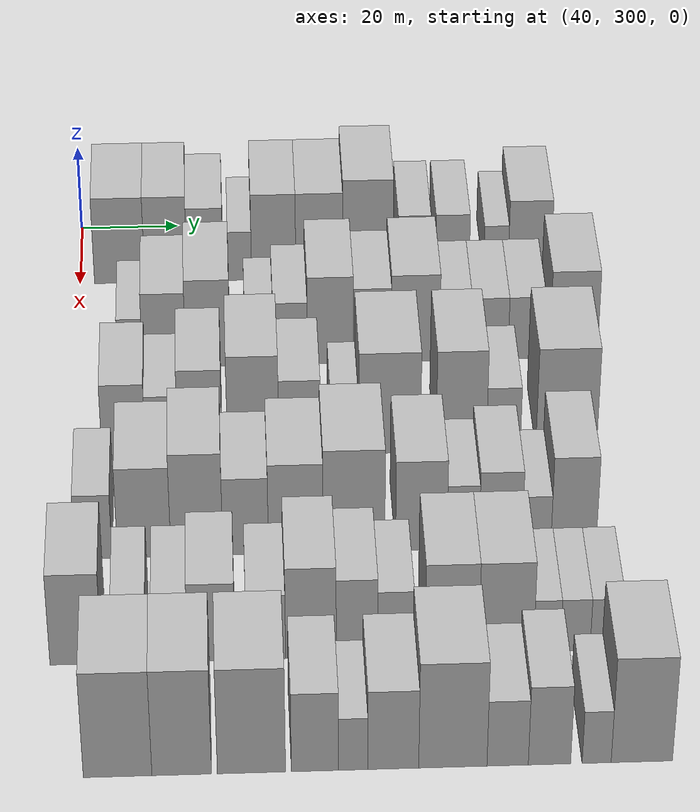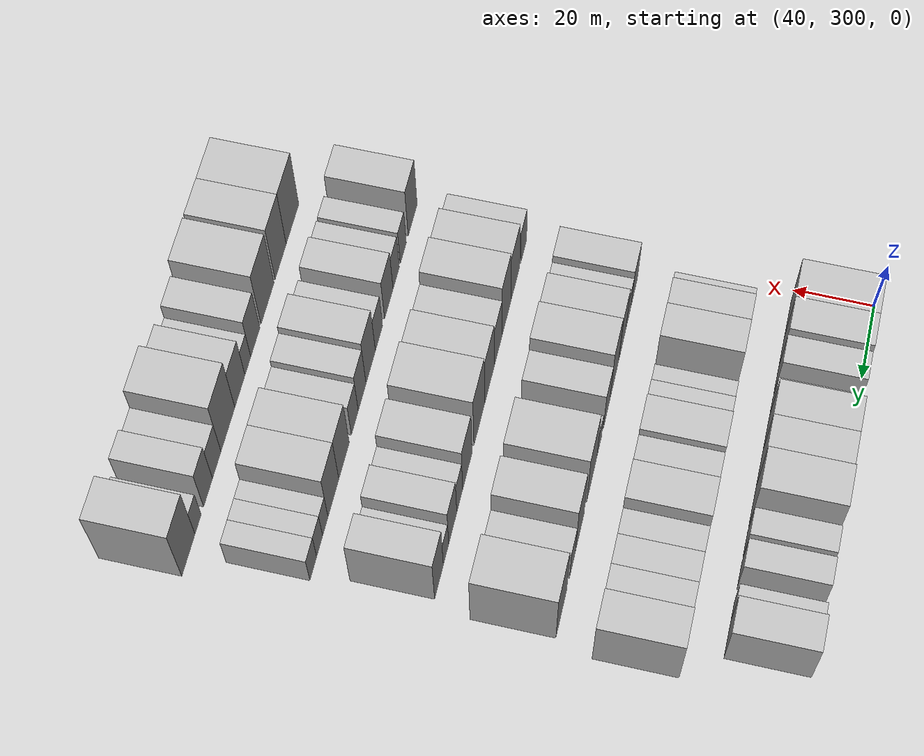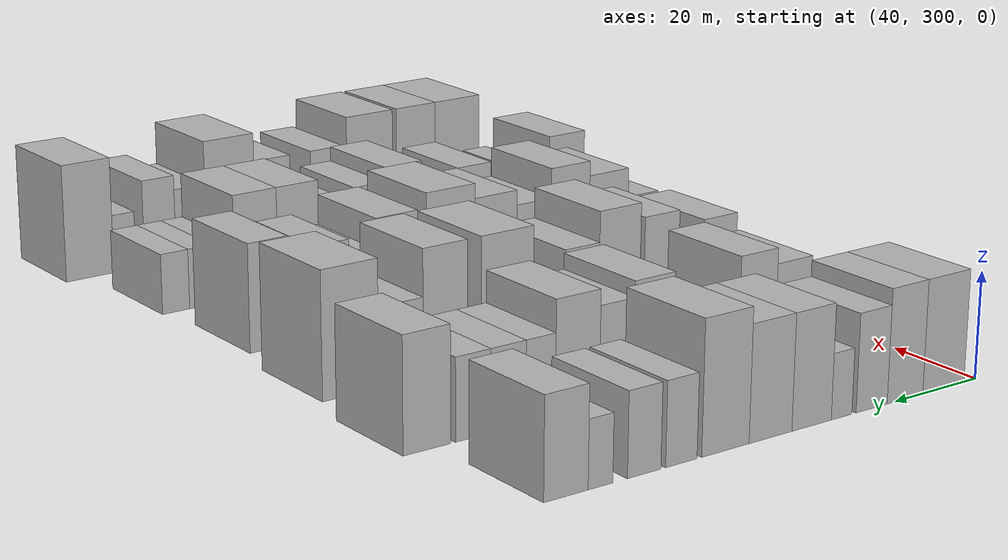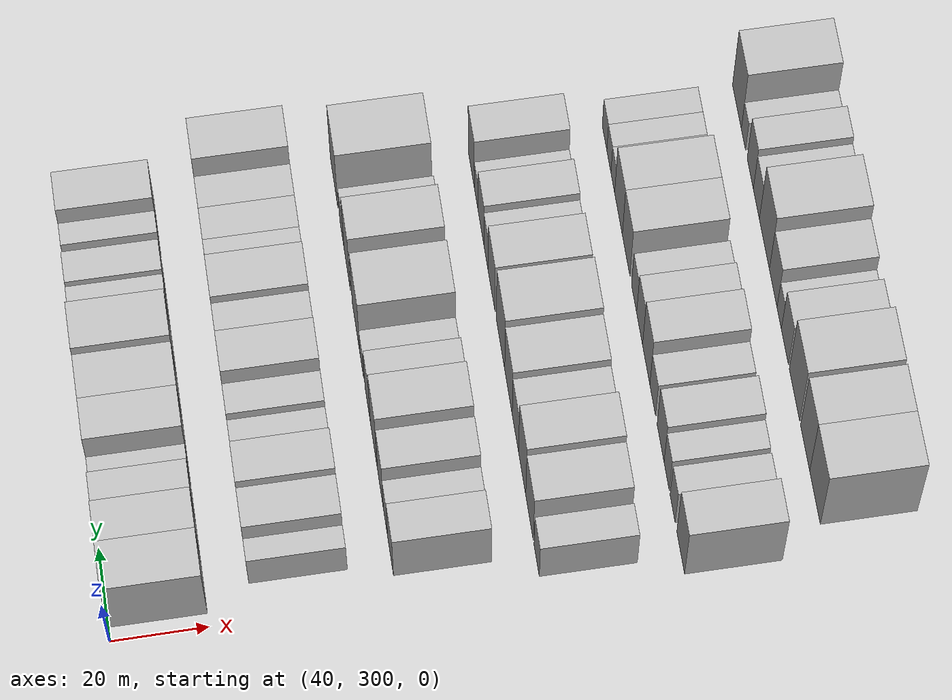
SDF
<sdf version="1.6">
 <world name="default">
  <model name="building_91">
   <static>1</static>
   <pose>50.0000 308.0852 0 0.000000 0.000000 0.000000</pose>
   <link name="link">
    <pose>0 0 10.50 0 0 0</pose>
    <collision name="collision"><geometry><box><size>20.0000 10.3074 21.0000</size></box></geometry></collision>
    <visual name="visual">
     <cast_shadows>0</cast_shadows>
     <geometry><box><size>20.0000 10.3074 21.0000</size></box></geometry>
     <material>
      <script>
       <uri>model://HANNAS_wall/materials/scripts</uri>
       <uri>model://HANNAS_wall/materials/textures</uri>
       <name>vrc/HANNAS_wall</name>
      </script>
     </material>
    </visual>
   </link>
  </model>
  <model name="building_92">
   <static>1</static>
   <pose>50.0000 317.5825 0 0.000000 0.000000 0.000000</pose>
   <link name="link">
    <pose>0 0 10.50 0 0 0</pose>
    <collision name="collision"><geometry><box><size>20.0000 8.6871 21.0000</size></box></geometry></collision>
    <visual name="visual">
     <cast_shadows>0</cast_shadows>
     <geometry><box><size>20.0000 8.6871 21.0000</size></box></geometry>
     <material>
      <script>
       <uri>model://HANNAS_wall/materials/scripts</uri>
       <uri>model://HANNAS_wall/materials/textures</uri>
       <name>vrc/HANNAS_wall</name>
      </script>
     </material>
    </visual>
   </link>
  </model>
  <model name="building_93">
   <static>1</static>
   <pose>50.0000 325.6408 0 0.000000 0.000000 0.000000</pose>
   <link name="link">
    <pose>0 0 9.00 0 0 0</pose>
    <collision name="collision"><geometry><box><size>20.0000 7.4296 18.0000</size></box></geometry></collision>
    <visual name="visual">
     <cast_shadows>0</cast_shadows>
     <geometry><box><size>20.0000 7.4296 18.0000</size></box></geometry>
     <material>
      <script>
       <uri>model://HANNAS_wall/materials/scripts</uri>
       <uri>model://HANNAS_wall/materials/textures</uri>
       <name>vrc/HANNAS_wall</name>
      </script>
     </material>
    </visual>
   </link>
  </model>
  <model name="building_94">
   <static>1</static>
   <pose>50.0000 332.7630 0 0.000000 0.000000 0.000000</pose>
   <link name="link">
    <pose>0 0 6.00 0 0 0</pose>
    <collision name="collision"><geometry><box><size>20.0000 4.8147 12.0000</size></box></geometry></collision>
    <visual name="visual">
     <cast_shadows>0</cast_shadows>
     <geometry><box><size>20.0000 4.8147 12.0000</size></box></geometry>
     <material>
      <script>
       <uri>model://HANNAS_wall/materials/scripts</uri>
       <uri>model://HANNAS_wall/materials/textures</uri>
       <name>vrc/HANNAS_wall</name>
      </script>
     </material>
    </visual>
   </link>
  </model>
  <model name="building_95">
   <static>1</static>
   <pose>50.0000 339.7054 0 0.000000 0.000000 0.000000</pose>
   <link name="link">
    <pose>0 0 10.50 0 0 0</pose>
    <collision name="collision"><geometry><box><size>20.0000 9.0702 21.0000</size></box></geometry></collision>
    <visual name="visual">
     <cast_shadows>0</cast_shadows>
     <geometry><box><size>20.0000 9.0702 21.0000</size></box></geometry>
     <material>
      <script>
       <uri>model://HANNAS_wall/materials/scripts</uri>
       <uri>model://HANNAS_wall/materials/textures</uri>
       <name>vrc/HANNAS_wall</name>
      </script>
     </material>
    </visual>
   </link>
  </model>
  <model name="building_96">
   <static>1</static>
   <pose>50.0000 349.0543 0 0.000000 0.000000 0.000000</pose>
   <link name="link">
    <pose>0 0 10.50 0 0 0</pose>
    <collision name="collision"><geometry><box><size>20.0000 9.6275 21.0000</size></box></geometry></collision>
    <visual name="visual">
     <cast_shadows>0</cast_shadows>
     <geometry><box><size>20.0000 9.6275 21.0000</size></box></geometry>
     <material>
      <script>
       <uri>model://HANNAS_wall/materials/scripts</uri>
       <uri>model://HANNAS_wall/materials/textures</uri>
       <name>vrc/HANNAS_wall</name>
      </script>
     </material>
    </visual>
   </link>
  </model>
  <model name="building_97">
   <static>1</static>
   <pose>50.0000 359.0477 0 0.000000 0.000000 0.000000</pose>
   <link name="link">
    <pose>0 0 12.00 0 0 0</pose>
    <collision name="collision"><geometry><box><size>20.0000 10.3594 24.0000</size></box></geometry></collision>
    <visual name="visual">
     <cast_shadows>0</cast_shadows>
     <geometry><box><size>20.0000 10.3594 24.0000</size></box></geometry>
     <material>
      <script>
       <uri>model://HANNAS_wall/materials/scripts</uri>
       <uri>model://HANNAS_wall/materials/textures</uri>
       <name>vrc/HANNAS_wall</name>
      </script>
     </material>
    </visual>
   </link>
  </model>
  <model name="building_98">
   <static>1</static>
   <pose>50.0000 368.5724 0 0.000000 0.000000 0.000000</pose>
   <link name="link">
    <pose>0 0 7.50 0 0 0</pose>
    <collision name="collision"><geometry><box><size>20.0000 6.6901 15.0000</size></box></geometry></collision>
    <visual name="visual">
     <cast_shadows>0</cast_shadows>
     <geometry><box><size>20.0000 6.6901 15.0000</size></box></geometry>
     <material>
      <script>
       <uri>model://HANNAS_wall/materials/scripts</uri>
       <uri>model://HANNAS_wall/materials/textures</uri>
       <name>vrc/HANNAS_wall</name>
      </script>
     </material>
    </visual>
   </link>
  </model>
  <model name="building_99">
   <static>1</static>
   <pose>50.0000 376.4038 0 0.000000 0.000000 0.000000</pose>
   <link name="link">
    <pose>0 0 7.50 0 0 0</pose>
    <collision name="collision"><geometry><box><size>20.0000 6.9726 15.0000</size></box></geometry></collision>
    <visual name="visual">
     <cast_shadows>0</cast_shadows>
     <geometry><box><size>20.0000 6.9726 15.0000</size></box></geometry>
     <material>
      <script>
       <uri>model://HANNAS_wall/materials/scripts</uri>
       <uri>model://HANNAS_wall/materials/textures</uri>
       <name>vrc/HANNAS_wall</name>
      </script>
     </material>
    </visual>
   </link>
  </model>
  <model name="building_100">
   <static>1</static>
   <pose>50.0000 385.4089 0 0.000000 0.000000 0.000000</pose>
   <link name="link">
    <pose>0 0 6.00 0 0 0</pose>
    <collision name="collision"><geometry><box><size>20.0000 5.0376 12.0000</size></box></geometry></collision>
    <visual name="visual">
     <cast_shadows>0</cast_shadows>
     <geometry><box><size>20.0000 5.0376 12.0000</size></box></geometry>
     <material>
      <script>
       <uri>model://HANNAS_wall/materials/scripts</uri>
       <uri>model://HANNAS_wall/materials/textures</uri>
       <name>vrc/HANNAS_wall</name>
      </script>
     </material>
    </visual>
   </link>
  </model>
  <model name="building_101">
   <static>1</static>
   <pose>50.0000 392.3606 0 0.000000 0.000000 0.000000</pose>
   <link name="link">
    <pose>0 0 9.00 0 0 0</pose>
    <collision name="collision"><geometry><box><size>20.0000 8.8659 18.0000</size></box></geometry></collision>
    <visual name="visual">
     <cast_shadows>0</cast_shadows>
     <geometry><box><size>20.0000 8.8659 18.0000</size></box></geometry>
     <material>
      <script>
       <uri>model://HANNAS_wall/materials/scripts</uri>
       <uri>model://HANNAS_wall/materials/textures</uri>
       <name>vrc/HANNAS_wall</name>
      </script>
     </material>
    </visual>
   </link>
  </model>
  <model name="building_201">
   <static>1</static>
   <pose>79.0000 310.5407 0 0.000000 0.000000 0.000000</pose>
   <link name="link">
    <pose>0 0 6.00 0 0 0</pose>
    <collision name="collision"><geometry><box><size>20.0000 4.9195 12.0000</size></box></geometry></collision>
    <visual name="visual">
     <cast_shadows>0</cast_shadows>
     <geometry><box><size>20.0000 4.9195 12.0000</size></box></geometry>
     <material>
      <script>
       <uri>model://HANNAS_wall/materials/scripts</uri>
       <uri>model://HANNAS_wall/materials/textures</uri>
       <name>vrc/HANNAS_wall</name>
      </script>
     </material>
    </visual>
   </link>
  </model>
  <model name="building_202">
   <static>1</static>
   <pose>79.0000 317.2866 0 0.000000 0.000000 0.000000</pose>
   <link name="link">
    <pose>0 0 9.00 0 0 0</pose>
    <collision name="collision"><geometry><box><size>20.0000 8.5724 18.0000</size></box></geometry></collision>
    <visual name="visual">
     <cast_shadows>0</cast_shadows>
     <geometry><box><size>20.0000 8.5724 18.0000</size></box></geometry>
     <material>
      <script>
       <uri>model://HANNAS_wall/materials/scripts</uri>
       <uri>model://HANNAS_wall/materials/textures</uri>
       <name>vrc/HANNAS_wall</name>
      </script>
     </material>
    </visual>
   </link>
  </model>
  <model name="building_203">
   <static>1</static>
   <pose>79.0000 325.9934 0 0.000000 0.000000 0.000000</pose>
   <link name="link">
    <pose>0 0 10.50 0 0 0</pose>
    <collision name="collision"><geometry><box><size>20.0000 8.8413 21.0000</size></box></geometry></collision>
    <visual name="visual">
     <cast_shadows>0</cast_shadows>
     <geometry><box><size>20.0000 8.8413 21.0000</size></box></geometry>
     <material>
      <script>
       <uri>model://HANNAS_wall/materials/scripts</uri>
       <uri>model://HANNAS_wall/materials/textures</uri>
       <name>vrc/HANNAS_wall</name>
      </script>
     </material>
    </visual>
   </link>
  </model>
  <model name="building_204">
   <static>1</static>
   <pose>79.0000 336.1957 0 0.000000 0.000000 0.000000</pose>
   <link name="link">
    <pose>0 0 6.00 0 0 0</pose>
    <collision name="collision"><geometry><box><size>20.0000 5.5632 12.0000</size></box></geometry></collision>
    <visual name="visual">
     <cast_shadows>0</cast_shadows>
     <geometry><box><size>20.0000 5.5632 12.0000</size></box></geometry>
     <material>
      <script>
       <uri>model://HANNAS_wall/materials/scripts</uri>
       <uri>model://HANNAS_wall/materials/textures</uri>
       <name>vrc/HANNAS_wall</name>
      </script>
     </material>
    </visual>
   </link>
  </model>
  <model name="building_205">
   <static>1</static>
   <pose>79.0000 342.3507 0 0.000000 0.000000 0.000000</pose>
   <link name="link">
    <pose>0 0 7.50 0 0 0</pose>
    <collision name="collision"><geometry><box><size>20.0000 6.7468 15.0000</size></box></geometry></collision>
    <visual name="visual">
     <cast_shadows>0</cast_shadows>
     <geometry><box><size>20.0000 6.7468 15.0000</size></box></geometry>
     <material>
      <script>
       <uri>model://HANNAS_wall/materials/scripts</uri>
       <uri>model://HANNAS_wall/materials/textures</uri>
       <name>vrc/HANNAS_wall</name>
      </script>
     </material>
    </visual>
   </link>
  </model>
  <model name="building_206">
   <static>1</static>
   <pose>79.0000 350.2733 0 0.000000 0.000000 0.000000</pose>
   <link name="link">
    <pose>0 0 10.50 0 0 0</pose>
    <collision name="collision"><geometry><box><size>20.0000 9.0984 21.0000</size></box></geometry></collision>
    <visual name="visual">
     <cast_shadows>0</cast_shadows>
     <geometry><box><size>20.0000 9.0984 21.0000</size></box></geometry>
     <material>
      <script>
       <uri>model://HANNAS_wall/materials/scripts</uri>
       <uri>model://HANNAS_wall/materials/textures</uri>
       <name>vrc/HANNAS_wall</name>
      </script>
     </material>
    </visual>
   </link>
  </model>
  <model name="building_207">
   <static>1</static>
   <pose>79.0000 358.6061 0 0.000000 0.000000 0.000000</pose>
   <link name="link">
    <pose>0 0 9.00 0 0 0</pose>
    <collision name="collision"><geometry><box><size>20.0000 7.5672 18.0000</size></box></geometry></collision>
    <visual name="visual">
     <cast_shadows>0</cast_shadows>
     <geometry><box><size>20.0000 7.5672 18.0000</size></box></geometry>
     <material>
      <script>
       <uri>model://HANNAS_wall/materials/scripts</uri>
       <uri>model://HANNAS_wall/materials/textures</uri>
       <name>vrc/HANNAS_wall</name>
      </script>
     </material>
    </visual>
   </link>
  </model>
  <model name="building_208">
   <static>1</static>
   <pose>79.0000 367.2001 0 0.000000 0.000000 0.000000</pose>
   <link name="link">
    <pose>0 0 10.50 0 0 0</pose>
    <collision name="collision"><geometry><box><size>20.0000 9.6208 21.0000</size></box></geometry></collision>
    <visual name="visual">
     <cast_shadows>0</cast_shadows>
     <geometry><box><size>20.0000 9.6208 21.0000</size></box></geometry>
     <material>
      <script>
       <uri>model://HANNAS_wall/materials/scripts</uri>
       <uri>model://HANNAS_wall/materials/textures</uri>
       <name>vrc/HANNAS_wall</name>
      </script>
     </material>
    </visual>
   </link>
  </model>
  <model name="building_209">
   <static>1</static>
   <pose>79.0000 375.1844 0 0.000000 0.000000 0.000000</pose>
   <link name="link">
    <pose>0 0 7.50 0 0 0</pose>
    <collision name="collision"><geometry><box><size>20.0000 6.3478 15.0000</size></box></geometry></collision>
    <visual name="visual">
     <cast_shadows>0</cast_shadows>
     <geometry><box><size>20.0000 6.3478 15.0000</size></box></geometry>
     <material>
      <script>
       <uri>model://HANNAS_wall/materials/scripts</uri>
       <uri>model://HANNAS_wall/materials/textures</uri>
       <name>vrc/HANNAS_wall</name>
      </script>
     </material>
    </visual>
   </link>
  </model>
  <model name="building_210">
   <static>1</static>
   <pose>79.0000 382.0198 0 0.000000 0.000000 0.000000</pose>
   <link name="link">
    <pose>0 0 7.50 0 0 0</pose>
    <collision name="collision"><geometry><box><size>20.0000 7.3231 15.0000</size></box></geometry></collision>
    <visual name="visual">
     <cast_shadows>0</cast_shadows>
     <geometry><box><size>20.0000 7.3231 15.0000</size></box></geometry>
     <material>
      <script>
       <uri>model://HANNAS_wall/materials/scripts</uri>
       <uri>model://HANNAS_wall/materials/textures</uri>
       <name>vrc/HANNAS_wall</name>
      </script>
     </material>
    </visual>
   </link>
  </model>
  <model name="building_211">
   <static>1</static>
   <pose>79.0000 389.3251 0 0.000000 0.000000 0.000000</pose>
   <link name="link">
    <pose>0 0 7.50 0 0 0</pose>
    <collision name="collision"><geometry><box><size>20.0000 7.2874 15.0000</size></box></geometry></collision>
    <visual name="visual">
     <cast_shadows>0</cast_shadows>
     <geometry><box><size>20.0000 7.2874 15.0000</size></box></geometry>
     <material>
      <script>
       <uri>model://HANNAS_wall/materials/scripts</uri>
       <uri>model://HANNAS_wall/materials/textures</uri>
       <name>vrc/HANNAS_wall</name>
      </script>
     </material>
    </visual>
   </link>
  </model>
  <model name="building_212">
   <static>1</static>
   <pose>79.0000 398.7498 0 0.000000 0.000000 0.000000</pose>
   <link name="link">
    <pose>0 0 10.50 0 0 0</pose>
    <collision name="collision"><geometry><box><size>20.0000 9.5620 21.0000</size></box></geometry></collision>
    <visual name="visual">
     <cast_shadows>0</cast_shadows>
     <geometry><box><size>20.0000 9.5620 21.0000</size></box></geometry>
     <material>
      <script>
       <uri>model://HANNAS_wall/materials/scripts</uri>
       <uri>model://HANNAS_wall/materials/textures</uri>
       <name>vrc/HANNAS_wall</name>
      </script>
     </material>
    </visual>
   </link>
  </model>
  <model name="building_315">
   <static>1</static>
   <pose>108.0000 309.5934 0 0.000000 0.000000 0.000000</pose>
   <link name="link">
    <pose>0 0 9.00 0 0 0</pose>
    <collision name="collision"><geometry><box><size>20.0000 8.3637 18.0000</size></box></geometry></collision>
    <visual name="visual">
     <cast_shadows>0</cast_shadows>
     <geometry><box><size>20.0000 8.3637 18.0000</size></box></geometry>
     <material>
      <script>
       <uri>model://HANNAS_wall/materials/scripts</uri>
       <uri>model://HANNAS_wall/materials/textures</uri>
       <name>vrc/HANNAS_wall</name>
      </script>
     </material>
    </visual>
   </link>
  </model>
  <model name="building_316">
   <static>1</static>
   <pose>108.0000 316.9019 0 0.000000 0.000000 0.000000</pose>
   <link name="link">
    <pose>0 0 7.50 0 0 0</pose>
    <collision name="collision"><geometry><box><size>20.0000 6.2533 15.0000</size></box></geometry></collision>
    <visual name="visual">
     <cast_shadows>0</cast_shadows>
     <geometry><box><size>20.0000 6.2533 15.0000</size></box></geometry>
     <material>
      <script>
       <uri>model://HANNAS_wall/materials/scripts</uri>
       <uri>model://HANNAS_wall/materials/textures</uri>
       <name>vrc/HANNAS_wall</name>
      </script>
     </material>
    </visual>
   </link>
  </model>
  <model name="building_317">
   <static>1</static>
   <pose>108.0000 324.2606 0 0.000000 0.000000 0.000000</pose>
   <link name="link">
    <pose>0 0 10.50 0 0 0</pose>
    <collision name="collision"><geometry><box><size>20.0000 8.4641 21.0000</size></box></geometry></collision>
    <visual name="visual">
     <cast_shadows>0</cast_shadows>
     <geometry><box><size>20.0000 8.4641 21.0000</size></box></geometry>
     <material>
      <script>
       <uri>model://HANNAS_wall/materials/scripts</uri>
       <uri>model://HANNAS_wall/materials/textures</uri>
       <name>vrc/HANNAS_wall</name>
      </script>
     </material>
    </visual>
   </link>
  </model>
  <model name="building_318">
   <static>1</static>
   <pose>108.0000 334.4115 0 0.000000 0.000000 0.000000</pose>
   <link name="link">
    <pose>0 0 12.00 0 0 0</pose>
    <collision name="collision"><geometry><box><size>20.0000 9.8378 24.0000</size></box></geometry></collision>
    <visual name="visual">
     <cast_shadows>0</cast_shadows>
     <geometry><box><size>20.0000 9.8378 24.0000</size></box></geometry>
     <material>
      <script>
       <uri>model://HANNAS_wall/materials/scripts</uri>
       <uri>model://HANNAS_wall/materials/textures</uri>
       <name>vrc/HANNAS_wall</name>
      </script>
     </material>
    </visual>
   </link>
  </model>
  <model name="building_319">
   <static>1</static>
   <pose>108.0000 343.3261 0 0.000000 0.000000 0.000000</pose>
   <link name="link">
    <pose>0 0 9.00 0 0 0</pose>
    <collision name="collision"><geometry><box><size>20.0000 7.9914 18.0000</size></box></geometry></collision>
    <visual name="visual">
     <cast_shadows>0</cast_shadows>
     <geometry><box><size>20.0000 7.9914 18.0000</size></box></geometry>
     <material>
      <script>
       <uri>model://HANNAS_wall/materials/scripts</uri>
       <uri>model://HANNAS_wall/materials/textures</uri>
       <name>vrc/HANNAS_wall</name>
      </script>
     </material>
    </visual>
   </link>
  </model>
  <model name="building_320">
   <static>1</static>
   <pose>108.0000 352.0047 0 0.000000 0.000000 0.000000</pose>
   <link name="link">
    <pose>0 0 6.00 0 0 0</pose>
    <collision name="collision"><geometry><box><size>20.0000 5.3657 12.0000</size></box></geometry></collision>
    <visual name="visual">
     <cast_shadows>0</cast_shadows>
     <geometry><box><size>20.0000 5.3657 12.0000</size></box></geometry>
     <material>
      <script>
       <uri>model://HANNAS_wall/materials/scripts</uri>
       <uri>model://HANNAS_wall/materials/textures</uri>
       <name>vrc/HANNAS_wall</name>
      </script>
     </material>
    </visual>
   </link>
  </model>
  <model name="building_321">
   <static>1</static>
   <pose>108.0000 360.6115 0 0.000000 0.000000 0.000000</pose>
   <link name="link">
    <pose>0 0 12.00 0 0 0</pose>
    <collision name="collision"><geometry><box><size>20.0000 11.8479 24.0000</size></box></geometry></collision>
    <visual name="visual">
     <cast_shadows>0</cast_shadows>
     <geometry><box><size>20.0000 11.8479 24.0000</size></box></geometry>
     <material>
      <script>
       <uri>model://HANNAS_wall/materials/scripts</uri>
       <uri>model://HANNAS_wall/materials/textures</uri>
       <name>vrc/HANNAS_wall</name>
      </script>
     </material>
    </visual>
   </link>
  </model>
  <model name="building_322">
   <static>1</static>
   <pose>108.0000 374.3873 0 0.000000 0.000000 0.000000</pose>
   <link name="link">
    <pose>0 0 12.00 0 0 0</pose>
    <collision name="collision"><geometry><box><size>20.0000 9.7038 24.0000</size></box></geometry></collision>
    <visual name="visual">
     <cast_shadows>0</cast_shadows>
     <geometry><box><size>20.0000 9.7038 24.0000</size></box></geometry>
     <material>
      <script>
       <uri>model://HANNAS_wall/materials/scripts</uri>
       <uri>model://HANNAS_wall/materials/textures</uri>
       <name>vrc/HANNAS_wall</name>
      </script>
     </material>
    </visual>
   </link>
  </model>
  <model name="building_323">
   <static>1</static>
   <pose>108.0000 382.5197 0 0.000000 0.000000 0.000000</pose>
   <link name="link">
    <pose>0 0 7.50 0 0 0</pose>
    <collision name="collision"><geometry><box><size>20.0000 6.5610 15.0000</size></box></geometry></collision>
    <visual name="visual">
     <cast_shadows>0</cast_shadows>
     <geometry><box><size>20.0000 6.5610 15.0000</size></box></geometry>
     <material>
      <script>
       <uri>model://HANNAS_wall/materials/scripts</uri>
       <uri>model://HANNAS_wall/materials/textures</uri>
       <name>vrc/HANNAS_wall</name>
      </script>
     </material>
    </visual>
   </link>
  </model>
  <model name="building_324">
   <static>1</static>
   <pose>108.0000 394.6834 0 0.000000 0.000000 0.000000</pose>
   <link name="link">
    <pose>0 0 12.00 0 0 0</pose>
    <collision name="collision"><geometry><box><size>20.0000 11.7662 24.0000</size></box></geometry></collision>
    <visual name="visual">
     <cast_shadows>0</cast_shadows>
     <geometry><box><size>20.0000 11.7662 24.0000</size></box></geometry>
     <material>
      <script>
       <uri>model://HANNAS_wall/materials/scripts</uri>
       <uri>model://HANNAS_wall/materials/textures</uri>
       <name>vrc/HANNAS_wall</name>
      </script>
     </material>
    </visual>
   </link>
  </model>
  <model name="building_426">
   <static>1</static>
   <pose>137.0000 304.2896 0 0.000000 0.000000 0.000000</pose>
   <link name="link">
    <pose>0 0 7.50 0 0 0</pose>
    <collision name="collision"><geometry><box><size>20.0000 6.8634 15.0000</size></box></geometry></collision>
    <visual name="visual">
     <cast_shadows>0</cast_shadows>
     <geometry><box><size>20.0000 6.8634 15.0000</size></box></geometry>
     <material>
      <script>
       <uri>model://HANNAS_wall/materials/scripts</uri>
       <uri>model://HANNAS_wall/materials/textures</uri>
       <name>vrc/HANNAS_wall</name>
      </script>
     </material>
    </visual>
   </link>
  </model>
  <model name="building_427">
   <static>1</static>
   <pose>137.0000 313.6620 0 0.000000 0.000000 0.000000</pose>
   <link name="link">
    <pose>0 0 10.50 0 0 0</pose>
    <collision name="collision"><geometry><box><size>20.0000 9.8813 21.0000</size></box></geometry></collision>
    <visual name="visual">
     <cast_shadows>0</cast_shadows>
     <geometry><box><size>20.0000 9.8813 21.0000</size></box></geometry>
     <material>
      <script>
       <uri>model://HANNAS_wall/materials/scripts</uri>
       <uri>model://HANNAS_wall/materials/textures</uri>
       <name>vrc/HANNAS_wall</name>
      </script>
     </material>
    </visual>
   </link>
  </model>
  <model name="building_428">
   <static>1</static>
   <pose>137.0000 323.4111 0 0.000000 0.000000 0.000000</pose>
   <link name="link">
    <pose>0 0 12.00 0 0 0</pose>
    <collision name="collision"><geometry><box><size>20.0000 9.6171 24.0000</size></box></geometry></collision>
    <visual name="visual">
     <cast_shadows>0</cast_shadows>
     <geometry><box><size>20.0000 9.6171 24.0000</size></box></geometry>
     <material>
      <script>
       <uri>model://HANNAS_wall/materials/scripts</uri>
       <uri>model://HANNAS_wall/materials/textures</uri>
       <name>vrc/HANNAS_wall</name>
      </script>
     </material>
    </visual>
   </link>
  </model>
  <model name="building_429">
   <static>1</static>
   <pose>137.0000 332.4479 0 0.000000 0.000000 0.000000</pose>
   <link name="link">
    <pose>0 0 9.00 0 0 0</pose>
    <collision name="collision"><geometry><box><size>20.0000 8.4566 18.0000</size></box></geometry></collision>
    <visual name="visual">
     <cast_shadows>0</cast_shadows>
     <geometry><box><size>20.0000 8.4566 18.0000</size></box></geometry>
     <material>
      <script>
       <uri>model://HANNAS_wall/materials/scripts</uri>
       <uri>model://HANNAS_wall/materials/textures</uri>
       <name>vrc/HANNAS_wall</name>
      </script>
     </material>
    </visual>
   </link>
  </model>
  <model name="building_430">
   <static>1</static>
   <pose>137.0000 341.7478 0 0.000000 0.000000 0.000000</pose>
   <link name="link">
    <pose>0 0 10.50 0 0 0</pose>
    <collision name="collision"><geometry><box><size>20.0000 10.1431 21.0000</size></box></geometry></collision>
    <visual name="visual">
     <cast_shadows>0</cast_shadows>
     <geometry><box><size>20.0000 10.1431 21.0000</size></box></geometry>
     <material>
      <script>
       <uri>model://HANNAS_wall/materials/scripts</uri>
       <uri>model://HANNAS_wall/materials/textures</uri>
       <name>vrc/HANNAS_wall</name>
      </script>
     </material>
    </visual>
   </link>
  </model>
  <model name="building_431">
   <static>1</static>
   <pose>137.0000 352.5362 0 0.000000 0.000000 0.000000</pose>
   <link name="link">
    <pose>0 0 12.00 0 0 0</pose>
    <collision name="collision"><geometry><box><size>20.0000 11.4338 24.0000</size></box></geometry></collision>
    <visual name="visual">
     <cast_shadows>0</cast_shadows>
     <geometry><box><size>20.0000 11.4338 24.0000</size></box></geometry>
     <material>
      <script>
       <uri>model://HANNAS_wall/materials/scripts</uri>
       <uri>model://HANNAS_wall/materials/textures</uri>
       <name>vrc/HANNAS_wall</name>
      </script>
     </material>
    </visual>
   </link>
  </model>
  <model name="building_432">
   <static>1</static>
   <pose>137.0000 365.0175 0 0.000000 0.000000 0.000000</pose>
   <link name="link">
    <pose>0 0 10.50 0 0 0</pose>
    <collision name="collision"><geometry><box><size>20.0000 9.5287 21.0000</size></box></geometry></collision>
    <visual name="visual">
     <cast_shadows>0</cast_shadows>
     <geometry><box><size>20.0000 9.5287 21.0000</size></box></geometry>
     <material>
      <script>
       <uri>model://HANNAS_wall/materials/scripts</uri>
       <uri>model://HANNAS_wall/materials/textures</uri>
       <name>vrc/HANNAS_wall</name>
      </script>
     </material>
    </visual>
   </link>
  </model>
  <model name="building_433">
   <static>1</static>
   <pose>137.0000 372.7826 0 0.000000 0.000000 0.000000</pose>
   <link name="link">
    <pose>0 0 7.50 0 0 0</pose>
    <collision name="collision"><geometry><box><size>20.0000 6.0016 15.0000</size></box></geometry></collision>
    <visual name="visual">
     <cast_shadows>0</cast_shadows>
     <geometry><box><size>20.0000 6.0016 15.0000</size></box></geometry>
     <material>
      <script>
       <uri>model://HANNAS_wall/materials/scripts</uri>
       <uri>model://HANNAS_wall/materials/textures</uri>
       <name>vrc/HANNAS_wall</name>
      </script>
     </material>
    </visual>
   </link>
  </model>
  <model name="building_434">
   <static>1</static>
   <pose>137.0000 379.7922 0 0.000000 0.000000 0.000000</pose>
   <link name="link">
    <pose>0 0 9.00 0 0 0</pose>
    <collision name="collision"><geometry><box><size>20.0000 8.0176 18.0000</size></box></geometry></collision>
    <visual name="visual">
     <cast_shadows>0</cast_shadows>
     <geometry><box><size>20.0000 8.0176 18.0000</size></box></geometry>
     <material>
      <script>
       <uri>model://HANNAS_wall/materials/scripts</uri>
       <uri>model://HANNAS_wall/materials/textures</uri>
       <name>vrc/HANNAS_wall</name>
      </script>
     </material>
    </visual>
   </link>
  </model>
  <model name="building_435">
   <static>1</static>
   <pose>137.0000 386.4858 0 0.000000 0.000000 0.000000</pose>
   <link name="link">
    <pose>0 0 6.00 0 0 0</pose>
    <collision name="collision"><geometry><box><size>20.0000 5.3695 12.0000</size></box></geometry></collision>
    <visual name="visual">
     <cast_shadows>0</cast_shadows>
     <geometry><box><size>20.0000 5.3695 12.0000</size></box></geometry>
     <material>
      <script>
       <uri>model://HANNAS_wall/materials/scripts</uri>
       <uri>model://HANNAS_wall/materials/textures</uri>
       <name>vrc/HANNAS_wall</name>
      </script>
     </material>
    </visual>
   </link>
  </model>
  <model name="building_436">
   <static>1</static>
   <pose>137.0000 393.4052 0 0.000000 0.000000 0.000000</pose>
   <link name="link">
    <pose>0 0 10.50 0 0 0</pose>
    <collision name="collision"><geometry><box><size>20.0000 8.4693 21.0000</size></box></geometry></collision>
    <visual name="visual">
     <cast_shadows>0</cast_shadows>
     <geometry><box><size>20.0000 8.4693 21.0000</size></box></geometry>
     <material>
      <script>
       <uri>model://HANNAS_wall/materials/scripts</uri>
       <uri>model://HANNAS_wall/materials/textures</uri>
       <name>vrc/HANNAS_wall</name>
      </script>
     </material>
    </visual>
   </link>
  </model>
  <model name="building_543">
   <static>1</static>
   <pose>166.0000 301.6455 0 0.000000 0.000000 0.000000</pose>
   <link name="link">
    <pose>0 0 10.50 0 0 0</pose>
    <collision name="collision"><geometry><box><size>20.0000 9.2597 21.0000</size></box></geometry></collision>
    <visual name="visual">
     <cast_shadows>0</cast_shadows>
     <geometry><box><size>20.0000 9.2597 21.0000</size></box></geometry>
     <material>
      <script>
       <uri>model://HANNAS_wall/materials/scripts</uri>
       <uri>model://HANNAS_wall/materials/textures</uri>
       <name>vrc/HANNAS_wall</name>
      </script>
     </material>
    </visual>
   </link>
  </model>
  <model name="building_544">
   <static>1</static>
   <pose>166.0000 311.3274 0 0.000000 0.000000 0.000000</pose>
   <link name="link">
    <pose>0 0 7.50 0 0 0</pose>
    <collision name="collision"><geometry><box><size>20.0000 6.1040 15.0000</size></box></geometry></collision>
    <visual name="visual">
     <cast_shadows>0</cast_shadows>
     <geometry><box><size>20.0000 6.1040 15.0000</size></box></geometry>
     <material>
      <script>
       <uri>model://HANNAS_wall/materials/scripts</uri>
       <uri>model://HANNAS_wall/materials/textures</uri>
       <name>vrc/HANNAS_wall</name>
      </script>
     </material>
    </visual>
   </link>
  </model>
  <model name="building_545">
   <static>1</static>
   <pose>166.0000 318.5158 0 0.000000 0.000000 0.000000</pose>
   <link name="link">
    <pose>0 0 7.50 0 0 0</pose>
    <collision name="collision"><geometry><box><size>20.0000 6.2729 15.0000</size></box></geometry></collision>
    <visual name="visual">
     <cast_shadows>0</cast_shadows>
     <geometry><box><size>20.0000 6.2729 15.0000</size></box></geometry>
     <material>
      <script>
       <uri>model://HANNAS_wall/materials/scripts</uri>
       <uri>model://HANNAS_wall/materials/textures</uri>
       <name>vrc/HANNAS_wall</name>
      </script>
     </material>
    </visual>
   </link>
  </model>
  <model name="building_546">
   <static>1</static>
   <pose>166.0000 325.8802 0 0.000000 0.000000 0.000000</pose>
   <link name="link">
    <pose>0 0 9.00 0 0 0</pose>
    <collision name="collision"><geometry><box><size>20.0000 8.4559 18.0000</size></box></geometry></collision>
    <visual name="visual">
     <cast_shadows>0</cast_shadows>
     <geometry><box><size>20.0000 8.4559 18.0000</size></box></geometry>
     <material>
      <script>
       <uri>model://HANNAS_wall/materials/scripts</uri>
       <uri>model://HANNAS_wall/materials/textures</uri>
       <name>vrc/HANNAS_wall</name>
      </script>
     </material>
    </visual>
   </link>
  </model>
  <model name="building_547">
   <static>1</static>
   <pose>166.0000 335.6056 0 0.000000 0.000000 0.000000</pose>
   <link name="link">
    <pose>0 0 7.50 0 0 0</pose>
    <collision name="collision"><geometry><box><size>20.0000 6.9949 15.0000</size></box></geometry></collision>
    <visual name="visual">
     <cast_shadows>0</cast_shadows>
     <geometry><box><size>20.0000 6.9949 15.0000</size></box></geometry>
     <material>
      <script>
       <uri>model://HANNAS_wall/materials/scripts</uri>
       <uri>model://HANNAS_wall/materials/textures</uri>
       <name>vrc/HANNAS_wall</name>
      </script>
     </material>
    </visual>
   </link>
  </model>
  <model name="building_548">
   <static>1</static>
   <pose>166.0000 343.6270 0 0.000000 0.000000 0.000000</pose>
   <link name="link">
    <pose>0 0 10.50 0 0 0</pose>
    <collision name="collision"><geometry><box><size>20.0000 9.0478 21.0000</size></box></geometry></collision>
    <visual name="visual">
     <cast_shadows>0</cast_shadows>
     <geometry><box><size>20.0000 9.0478 21.0000</size></box></geometry>
     <material>
      <script>
       <uri>model://HANNAS_wall/materials/scripts</uri>
       <uri>model://HANNAS_wall/materials/textures</uri>
       <name>vrc/HANNAS_wall</name>
      </script>
     </material>
    </visual>
   </link>
  </model>
  <model name="building_549">
   <static>1</static>
   <pose>166.0000 351.8527 0 0.000000 0.000000 0.000000</pose>
   <link name="link">
    <pose>0 0 9.00 0 0 0</pose>
    <collision name="collision"><geometry><box><size>20.0000 7.4035 18.0000</size></box></geometry></collision>
    <visual name="visual">
     <cast_shadows>0</cast_shadows>
     <geometry><box><size>20.0000 7.4035 18.0000</size></box></geometry>
     <material>
      <script>
       <uri>model://HANNAS_wall/materials/scripts</uri>
       <uri>model://HANNAS_wall/materials/textures</uri>
       <name>vrc/HANNAS_wall</name>
      </script>
     </material>
    </visual>
   </link>
  </model>
  <model name="building_550">
   <static>1</static>
   <pose>166.0000 358.7978 0 0.000000 0.000000 0.000000</pose>
   <link name="link">
    <pose>0 0 7.50 0 0 0</pose>
    <collision name="collision"><geometry><box><size>20.0000 6.4869 15.0000</size></box></geometry></collision>
    <visual name="visual">
     <cast_shadows>0</cast_shadows>
     <geometry><box><size>20.0000 6.4869 15.0000</size></box></geometry>
     <material>
      <script>
       <uri>model://HANNAS_wall/materials/scripts</uri>
       <uri>model://HANNAS_wall/materials/textures</uri>
       <name>vrc/HANNAS_wall</name>
      </script>
     </material>
    </visual>
   </link>
  </model>
  <model name="building_551">
   <static>1</static>
   <pose>166.0000 368.8595 0 0.000000 0.000000 0.000000</pose>
   <link name="link">
    <pose>0 0 10.50 0 0 0</pose>
    <collision name="collision"><geometry><box><size>20.0000 9.6365 21.0000</size></box></geometry></collision>
    <visual name="visual">
     <cast_shadows>0</cast_shadows>
     <geometry><box><size>20.0000 9.6365 21.0000</size></box></geometry>
     <material>
      <script>
       <uri>model://HANNAS_wall/materials/scripts</uri>
       <uri>model://HANNAS_wall/materials/textures</uri>
       <name>vrc/HANNAS_wall</name>
      </script>
     </material>
    </visual>
   </link>
  </model>
  <model name="building_552">
   <static>1</static>
   <pose>166.0000 378.6024 0 0.000000 0.000000 0.000000</pose>
   <link name="link">
    <pose>0 0 10.50 0 0 0</pose>
    <collision name="collision"><geometry><box><size>20.0000 9.8492 21.0000</size></box></geometry></collision>
    <visual name="visual">
     <cast_shadows>0</cast_shadows>
     <geometry><box><size>20.0000 9.8492 21.0000</size></box></geometry>
     <material>
      <script>
       <uri>model://HANNAS_wall/materials/scripts</uri>
       <uri>model://HANNAS_wall/materials/textures</uri>
       <name>vrc/HANNAS_wall</name>
      </script>
     </material>
    </visual>
   </link>
  </model>
  <model name="building_553">
   <static>1</static>
   <pose>166.0000 385.9403 0 0.000000 0.000000 0.000000</pose>
   <link name="link">
    <pose>0 0 6.00 0 0 0</pose>
    <collision name="collision"><geometry><box><size>20.0000 4.8266 12.0000</size></box></geometry></collision>
    <visual name="visual">
     <cast_shadows>0</cast_shadows>
     <geometry><box><size>20.0000 4.8266 12.0000</size></box></geometry>
     <material>
      <script>
       <uri>model://HANNAS_wall/materials/scripts</uri>
       <uri>model://HANNAS_wall/materials/textures</uri>
       <name>vrc/HANNAS_wall</name>
      </script>
     </material>
    </visual>
   </link>
  </model>
  <model name="building_554">
   <static>1</static>
   <pose>166.0000 391.0323 0 0.000000 0.000000 0.000000</pose>
   <link name="link">
    <pose>0 0 6.00 0 0 0</pose>
    <collision name="collision"><geometry><box><size>20.0000 5.3575 12.0000</size></box></geometry></collision>
    <visual name="visual">
     <cast_shadows>0</cast_shadows>
     <geometry><box><size>20.0000 5.3575 12.0000</size></box></geometry>
     <material>
      <script>
       <uri>model://HANNAS_wall/materials/scripts</uri>
       <uri>model://HANNAS_wall/materials/textures</uri>
       <name>vrc/HANNAS_wall</name>
      </script>
     </material>
    </visual>
   </link>
  </model>
  <model name="building_555">
   <static>1</static>
   <pose>166.0000 396.6795 0 0.000000 0.000000 0.000000</pose>
   <link name="link">
    <pose>0 0 6.00 0 0 0</pose>
    <collision name="collision"><geometry><box><size>20.0000 5.9369 12.0000</size></box></geometry></collision>
    <visual name="visual">
     <cast_shadows>0</cast_shadows>
     <geometry><box><size>20.0000 5.9369 12.0000</size></box></geometry>
     <material>
      <script>
       <uri>model://HANNAS_wall/materials/scripts</uri>
       <uri>model://HANNAS_wall/materials/textures</uri>
       <name>vrc/HANNAS_wall</name>
      </script>
     </material>
    </visual>
   </link>
  </model>
  <model name="building_658">
   <static>1</static>
   <pose>195.0000 309.4224 0 0.000000 0.000000 0.000000</pose>
   <link name="link">
    <pose>0 0 12.00 0 0 0</pose>
    <collision name="collision"><geometry><box><size>20.0000 11.7789 24.0000</size></box></geometry></collision>
    <visual name="visual">
     <cast_shadows>0</cast_shadows>
     <geometry><box><size>20.0000 11.7789 24.0000</size></box></geometry>
     <material>
      <script>
       <uri>model://HANNAS_wall/materials/scripts</uri>
       <uri>model://HANNAS_wall/materials/textures</uri>
       <name>vrc/HANNAS_wall</name>
      </script>
     </material>
    </visual>
   </link>
  </model>
  <model name="building_659">
   <static>1</static>
   <pose>195.0000 320.4390 0 0.000000 0.000000 0.000000</pose>
   <link name="link">
    <pose>0 0 12.00 0 0 0</pose>
    <collision name="collision"><geometry><box><size>20.0000 10.2543 24.0000</size></box></geometry></collision>
    <visual name="visual">
     <cast_shadows>0</cast_shadows>
     <geometry><box><size>20.0000 10.2543 24.0000</size></box></geometry>
     <material>
      <script>
       <uri>model://HANNAS_wall/materials/scripts</uri>
       <uri>model://HANNAS_wall/materials/textures</uri>
       <name>vrc/HANNAS_wall</name>
      </script>
     </material>
    </visual>
   </link>
  </model>
  <model name="building_660">
   <static>1</static>
   <pose>195.0000 332.4393 0 0.000000 0.000000 0.000000</pose>
   <link name="link">
    <pose>0 0 12.00 0 0 0</pose>
    <collision name="collision"><geometry><box><size>20.0000 11.7463 24.0000</size></box></geometry></collision>
    <visual name="visual">
     <cast_shadows>0</cast_shadows>
     <geometry><box><size>20.0000 11.7463 24.0000</size></box></geometry>
     <material>
      <script>
       <uri>model://HANNAS_wall/materials/scripts</uri>
       <uri>model://HANNAS_wall/materials/textures</uri>
       <name>vrc/HANNAS_wall</name>
      </script>
     </material>
    </visual>
   </link>
  </model>
  <model name="building_661">
   <static>1</static>
   <pose>195.0000 343.3760 0 0.000000 0.000000 0.000000</pose>
   <link name="link">
    <pose>0 0 9.00 0 0 0</pose>
    <collision name="collision"><geometry><box><size>20.0000 8.1270 18.0000</size></box></geometry></collision>
    <visual name="visual">
     <cast_shadows>0</cast_shadows>
     <geometry><box><size>20.0000 8.1270 18.0000</size></box></geometry>
     <material>
      <script>
       <uri>model://HANNAS_wall/materials/scripts</uri>
       <uri>model://HANNAS_wall/materials/textures</uri>
       <name>vrc/HANNAS_wall</name>
      </script>
     </material>
    </visual>
   </link>
  </model>
  <model name="building_662">
   <static>1</static>
   <pose>195.0000 349.9524 0 0.000000 0.000000 0.000000</pose>
   <link name="link">
    <pose>0 0 6.00 0 0 0</pose>
    <collision name="collision"><geometry><box><size>20.0000 5.0257 12.0000</size></box></geometry></collision>
    <visual name="visual">
     <cast_shadows>0</cast_shadows>
     <geometry><box><size>20.0000 5.0257 12.0000</size></box></geometry>
     <material>
      <script>
       <uri>model://HANNAS_wall/materials/scripts</uri>
       <uri>model://HANNAS_wall/materials/textures</uri>
       <name>vrc/HANNAS_wall</name>
      </script>
     </material>
    </visual>
   </link>
  </model>
  <model name="building_663">
   <static>1</static>
   <pose>195.0000 356.8671 0 0.000000 0.000000 0.000000</pose>
   <link name="link">
    <pose>0 0 9.00 0 0 0</pose>
    <collision name="collision"><geometry><box><size>20.0000 8.8037 18.0000</size></box></geometry></collision>
    <visual name="visual">
     <cast_shadows>0</cast_shadows>
     <geometry><box><size>20.0000 8.8037 18.0000</size></box></geometry>
     <material>
      <script>
       <uri>model://HANNAS_wall/materials/scripts</uri>
       <uri>model://HANNAS_wall/materials/textures</uri>
       <name>vrc/HANNAS_wall</name>
      </script>
     </material>
    </visual>
   </link>
  </model>
  <model name="building_664">
   <static>1</static>
   <pose>195.0000 367.1673 0 0.000000 0.000000 0.000000</pose>
   <link name="link">
    <pose>0 0 12.00 0 0 0</pose>
    <collision name="collision"><geometry><box><size>20.0000 11.7968 24.0000</size></box></geometry></collision>
    <visual name="visual">
     <cast_shadows>0</cast_shadows>
     <geometry><box><size>20.0000 11.7968 24.0000</size></box></geometry>
     <material>
      <script>
       <uri>model://HANNAS_wall/materials/scripts</uri>
       <uri>model://HANNAS_wall/materials/textures</uri>
       <name>vrc/HANNAS_wall</name>
      </script>
     </material>
    </visual>
   </link>
  </model>
  <model name="building_665">
   <static>1</static>
   <pose>195.0000 376.6400 0 0.000000 0.000000 0.000000</pose>
   <link name="link">
    <pose>0 0 7.50 0 0 0</pose>
    <collision name="collision"><geometry><box><size>20.0000 7.1484 15.0000</size></box></geometry></collision>
    <visual name="visual">
     <cast_shadows>0</cast_shadows>
     <geometry><box><size>20.0000 7.1484 15.0000</size></box></geometry>
     <material>
      <script>
       <uri>model://HANNAS_wall/materials/scripts</uri>
       <uri>model://HANNAS_wall/materials/textures</uri>
       <name>vrc/HANNAS_wall</name>
      </script>
     </material>
    </visual>
   </link>
  </model>
  <model name="building_666">
   <static>1</static>
   <pose>195.0000 383.8778 0 0.000000 0.000000 0.000000</pose>
   <link name="link">
    <pose>0 0 9.00 0 0 0</pose>
    <collision name="collision"><geometry><box><size>20.0000 7.3274 18.0000</size></box></geometry></collision>
    <visual name="visual">
     <cast_shadows>0</cast_shadows>
     <geometry><box><size>20.0000 7.3274 18.0000</size></box></geometry>
     <material>
      <script>
       <uri>model://HANNAS_wall/materials/scripts</uri>
       <uri>model://HANNAS_wall/materials/textures</uri>
       <name>vrc/HANNAS_wall</name>
      </script>
     </material>
    </visual>
   </link>
  </model>
  <model name="building_667">
   <static>1</static>
   <pose>195.0000 392.0546 0 0.000000 0.000000 0.000000</pose>
   <link name="link">
    <pose>0 0 6.00 0 0 0</pose>
    <collision name="collision"><geometry><box><size>20.0000 5.0261 12.0000</size></box></geometry></collision>
    <visual name="visual">
     <cast_shadows>0</cast_shadows>
     <geometry><box><size>20.0000 5.0261 12.0000</size></box></geometry>
     <material>
      <script>
       <uri>model://HANNAS_wall/materials/scripts</uri>
       <uri>model://HANNAS_wall/materials/textures</uri>
       <name>vrc/HANNAS_wall</name>
      </script>
     </material>
    </visual>
   </link>
  </model>
  <model name="building_668">
   <static>1</static>
   <pose>195.0000 399.8838 0 0.000000 0.000000 0.000000</pose>
   <link name="link">
    <pose>0 0 12.00 0 0 0</pose>
    <collision name="collision"><geometry><box><size>20.0000 10.6323 24.0000</size></box></geometry></collision>
    <visual name="visual">
     <cast_shadows>0</cast_shadows>
     <geometry><box><size>20.0000 10.6323 24.0000</size></box></geometry>
     <material>
      <script>
       <uri>model://HANNAS_wall/materials/scripts</uri>
       <uri>model://HANNAS_wall/materials/textures</uri>
       <name>vrc/HANNAS_wall</name>
      </script>
     </material>
    </visual>
   </link>
  </model>
 </world>
</sdf>
